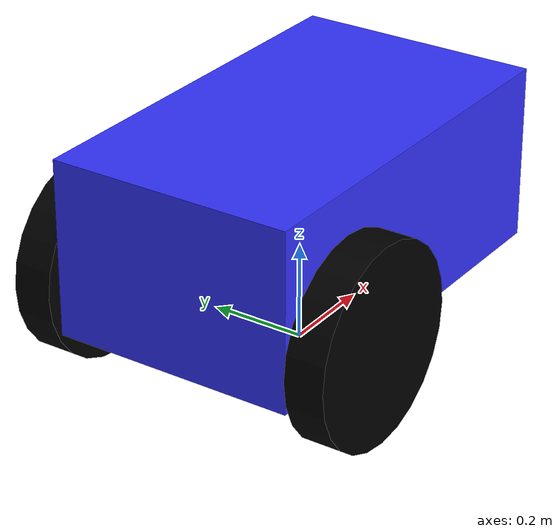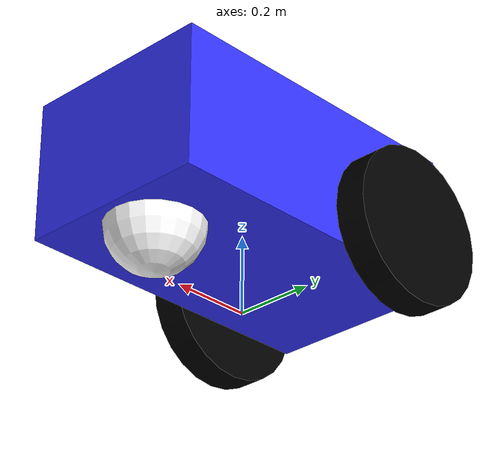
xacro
<?xml version="1.0"?>
<robot name="robot" xmlns:xacro="http://ros.org/wiki/xacro">

  <xacro:include filename="$(find diff_drive_robot)/urdf/robot.gazebo.xacro"/>

  <!-- Define robot constants -->
  <xacro:property name="base_width" value="0.50"/>
  <xacro:property name="base_length" value="0.84"/>
  <xacro:property name="base_height" value="0.36"/>

  <xacro:property name="wheel_radius" value="0.20"/>
  <xacro:property name="wheel_thickness" value="0.08"/>
  <xacro:property name="wheel_ygap" value="0.05"/>
  <xacro:property name="wheel_zoff" value="0.10"/>
  <xacro:property name="wheel_xoff" value="0.24"/>

  <xacro:property name="caster_xoff" value="0.28"/>

  <material name="white">
    <color rgba="1 1 1 1" />
  </material>

  <material name="blue">
    <color rgba="0.2 0.2 1 1"/>
  </material>

  <material name="black">
    <color rgba="0 0 0 1"/>
  </material>

  <!-- Define intertial property macros  -->
  <xacro:macro name="box_inertia" params="m w h d">
    <inertial>
      <origin xyz="0 0 0" rpy="${pi/2} 0 ${pi/2}"/>
      <mass value="${m}"/>
      <inertia ixx="${(m/12) * (h*h + d*d)}" ixy="0.0" ixz="0.0"
               iyy="${(m/12) * (w*w + d*d)}" iyz="0.0"
               izz="${(m/12) * (w*w + h*h)}"/>
    </inertial>
  </xacro:macro>

  <xacro:macro name="cylinder_inertia" params="m r h">
    <inertial>
      <origin xyz="0 0 0" rpy="${pi/2} 0 0" />
      <mass value="${m}"/>
      <inertia ixx="${(m/12) * (3*r*r + h*h)}" ixy = "0" ixz = "0"
               iyy="${(m/12) * (3*r*r + h*h)}" iyz = "0"
               izz="${(m/2) * (r*r)}"/>
    </inertial>
  </xacro:macro>

  <xacro:macro name="sphere_inertia" params="m r">
    <inertial>
      <mass value="${m}"/>
      <inertia ixx="${(2/5) * m * (r*r)}" ixy="0.0" ixz="0.0"
               iyy="${(2/5) * m * (r*r)}" iyz="0.0"
               izz="${(2/5) * m * (r*r)}"/>
    </inertial>
  </xacro:macro>

    <!-- World Base -->
  <link name="world_link"/>

    <!-- Robot Base -->
  <link name="base_link">
    <visual>
      <geometry>
        <box size="${base_length} ${base_width} ${base_height}"/>
      </geometry>

      <material name="blue"/>
    </visual>

    <collision>
      <geometry>
        <box size="${base_length} ${base_width} ${base_height}"/>
      </geometry>
    </collision>

    <xacro:box_inertia m="15" w="${base_width}" d="${base_length}" h="${base_height}"/>
  </link>

  <gazebo reference="base_link">
      <material>Gazebo/Blue</material>
  </gazebo>

  <joint name="world_joint" type="fixed">
    <parent link="world_link"/>
    <child link="base_link"/>
    <origin xyz="0.0 0.0 ${(wheel_radius+wheel_zoff)}" rpy="0 0 0"/>
  </joint>

    <!-- Robot Footprint -->
  <link name="base_footprint"/>

  <joint name="base_joint" type="fixed">
    <parent link="base_link"/>
    <child link="base_footprint"/>
    <origin xyz="0.0 0.0 ${-(wheel_radius+wheel_zoff)}" rpy="0 0 0"/>
  </joint>

    <!-- Wheels -->
  <xacro:macro name="wheel" params="prefix x_reflect y_reflect">
    <link name="${prefix}_link">
      <visual>
        <origin xyz="0 0 0" rpy="${pi/2} 0 0"/>
        <geometry>
          <cylinder radius="${wheel_radius}" length="${wheel_thickness}"/>
        </geometry>

        <material name="black"/>

      </visual>

      <collision>
        <origin xyz="0 0 0" rpy="${pi/2} 0 0"/>
        <geometry>
          <cylinder radius="${wheel_radius}" length="${wheel_thickness}"/>
        </geometry>
      </collision>

      <xacro:cylinder_inertia m="0.5" r="${wheel_radius}" h="${wheel_thickness}"/>
    </link>

    <gazebo reference="${prefix}_link">
        <material>Gazebo/Black</material>
    </gazebo>

    <joint name="${prefix}_joint" type="continuous">
      <parent link="base_link"/>
      <child link="${prefix}_link"/>
      <origin xyz="${x_reflect*wheel_xoff} ${y_reflect*(base_width/2+wheel_ygap)} ${-wheel_zoff}" rpy="0 0 0"/>
      <axis xyz="0 1 0"/>
    </joint>
  </xacro:macro>

  <xacro:wheel prefix="drivewhl_l" x_reflect="-1" y_reflect="1" />
  <xacro:wheel prefix="drivewhl_r" x_reflect="-1" y_reflect="-1" />

    <!-- Caster Wheel -->
  <link name="front_caster">
    <visual>
      <geometry>
        <sphere radius="${(wheel_radius+wheel_zoff-(base_height/2))}"/>
      </geometry>

      <material name="white"/>
    </visual>

    <collision>
      <geometry>
        <sphere radius="${(wheel_radius+wheel_zoff-(base_height/2))}"/>
      </geometry>
    </collision>

    <xacro:sphere_inertia m="0.5" r="${(wheel_radius+wheel_zoff-(base_height/2))}"/>
  </link>

  <joint name="caster_joint" type="fixed">
    <parent link="base_link"/>
    <child link="front_caster"/>
    <origin xyz="${caster_xoff} 0.0 ${-(base_height/2)}" rpy="0 0 0"/>
  </joint>

  <gazebo reference="front_caster">
    <material>Gazebo/White</material>
    <mu1 value="0.001"/>
    <mu2 value="0.001"/>
  </gazebo>

</robot>
